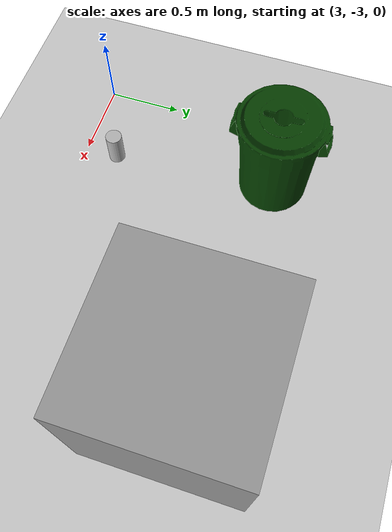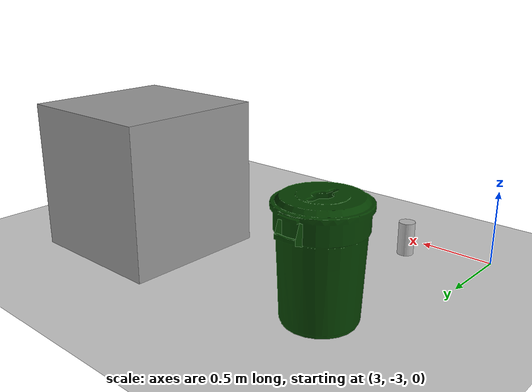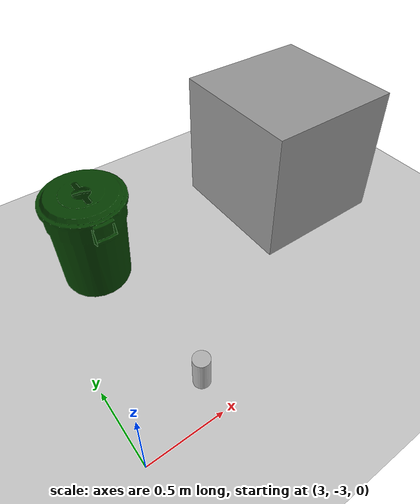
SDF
<sdf version="1.6">
 <world name="default">
  <light name="sun" type="directional">
   <pose>0 0 10 0 -0 0</pose>
   <diffuse>0.8 0.8 0.8 1</diffuse>
   <specular>0.1 0.1 0.1 1</specular>
   <attenuation>
    <range>1000</range>
    <constant>0.9</constant>
    <linear>0.01</linear>
    <quadratic>0.001</quadratic>
   </attenuation>
   <direction>-0.5 0.5 -1</direction>
  </light>
  <model name="ground_plane">
   <static>1</static>
   <link name="link">
    <collision name="collision">
     <geometry><plane><normal>0 0 1</normal><size>100 100</size></plane></geometry>
     <surface><friction><ode><mu>100</mu><mu2>50</mu2></ode></friction></surface>
    </collision>
    <visual name="visual">
     <cast_shadows>0</cast_shadows>
     <geometry><plane><normal>0 0 1</normal><size>100 100</size></plane></geometry>
     <material>
      <script><uri>file://media/materials/scripts/gazebo.material</uri><name>Gazebo/Grey</name></script>
     </material>
    </visual>
   </link>
  </model>
  <gravity>0 0 -9.8</gravity>
  <magnetic_field>6e-06 2.3e-05 -4.2e-05</magnetic_field>
  <atmosphere type="adiabatic"/>
  <physics name="default_physics" default="0" type="ode">
   <max_step_size>0.001</max_step_size>
   <real_time_factor>1</real_time_factor>
   <real_time_update_rate>1000</real_time_update_rate>
  </physics>
  <scene><ambient>0.4 0.4 0.4 1</ambient><background>0.7 0.7 0.7 1</background><shadows>1</shadows></scene>
  <spherical_coordinates>
   <surface_model>EARTH_WGS84</surface_model>
   <latitude_deg>0</latitude_deg>
   <longitude_deg>0</longitude_deg>
   <elevation>0</elevation>
   <heading_deg>0</heading_deg>
  </spherical_coordinates>
  <model name="first_2015_trash_can">
   <link name="link">
    <inertial>
     <pose>0 0 0.3683 0 -0 0</pose>
     <mass>4.83076</mass>
     <inertia>
      <ixx>0.281534</ixx>
      <ixy>0</ixy>
      <ixz>0</ixz>
      <iyy>0.281534</iyy>
      <iyz>0</iyz>
      <izz>0.126223</izz>
     </inertia>
    </inertial>
    <visual name="visual">
     <geometry>
      <mesh><uri>model://first_2015_trash_can/meshes/trash_can.dae</uri><scale>1 1 1</scale></mesh>
     </geometry>
    </visual>
    <collision name="collision">
     <geometry>
      <mesh><uri>model://first_2015_trash_can/meshes/trash_can.dae</uri><scale>1 1 1</scale></mesh>
     </geometry>
    </collision>
   </link>
   <pose>3.40771 -1.66133 -1e-06 -4e-06 1.9e-05 -0.000279</pose>
  </model>
  <model name="unit_box_0">
   <pose>4.99325 -1.74985 0.499995 -1e-05 0 0</pose>
   <link name="link">
    <inertial>
     <mass>1</mass>
     <inertia>
      <ixx>0.166667</ixx>
      <ixy>0</ixy>
      <ixz>0</ixz>
      <iyy>0.166667</iyy>
      <iyz>0</iyz>
      <izz>0.166667</izz>
     </inertia>
    </inertial>
    <collision name="collision"><geometry><box><size>1 1 1</size></box></geometry></collision>
    <visual name="visual">
     <geometry><box><size>1 1 1</size></box></geometry>
     <material>
      <script><name>Gazebo/Grey</name><uri>file://media/materials/scripts/gazebo.material</uri></script>
     </material>
    </visual>
   </link>
  </model>
  <model name="beer">
   <link name="link">
    <pose>0 0 0.115 0 -0 0</pose>
    <inertial>
     <mass>0.39</mass>
     <inertia><ixx>0.00058</ixx><ixy>0</ixy><ixz>0</ixz><iyy>0.00058</iyy><iyz>0</iyz><izz>0.00019</izz></inertia>
    </inertial>
    <collision name="collision">
     <geometry><cylinder><radius>0.055</radius><length>0.23</length></cylinder></geometry>
    </collision>
    <visual name="visual">
     <geometry><cylinder><radius>0.055</radius><length>0.23</length></cylinder></geometry>
     <material>
      <script>
       <uri>model://beer/materials/scripts</uri>
       <uri>model://beer/materials/textures</uri>
       <name>Beer/Diffuse</name>
      </script>
     </material>
    </visual>
   </link>
   <pose>3.51392 -2.77282 -2e-06 1e-06 -0 -1e-06</pose>
  </model>
 </world>
</sdf>
